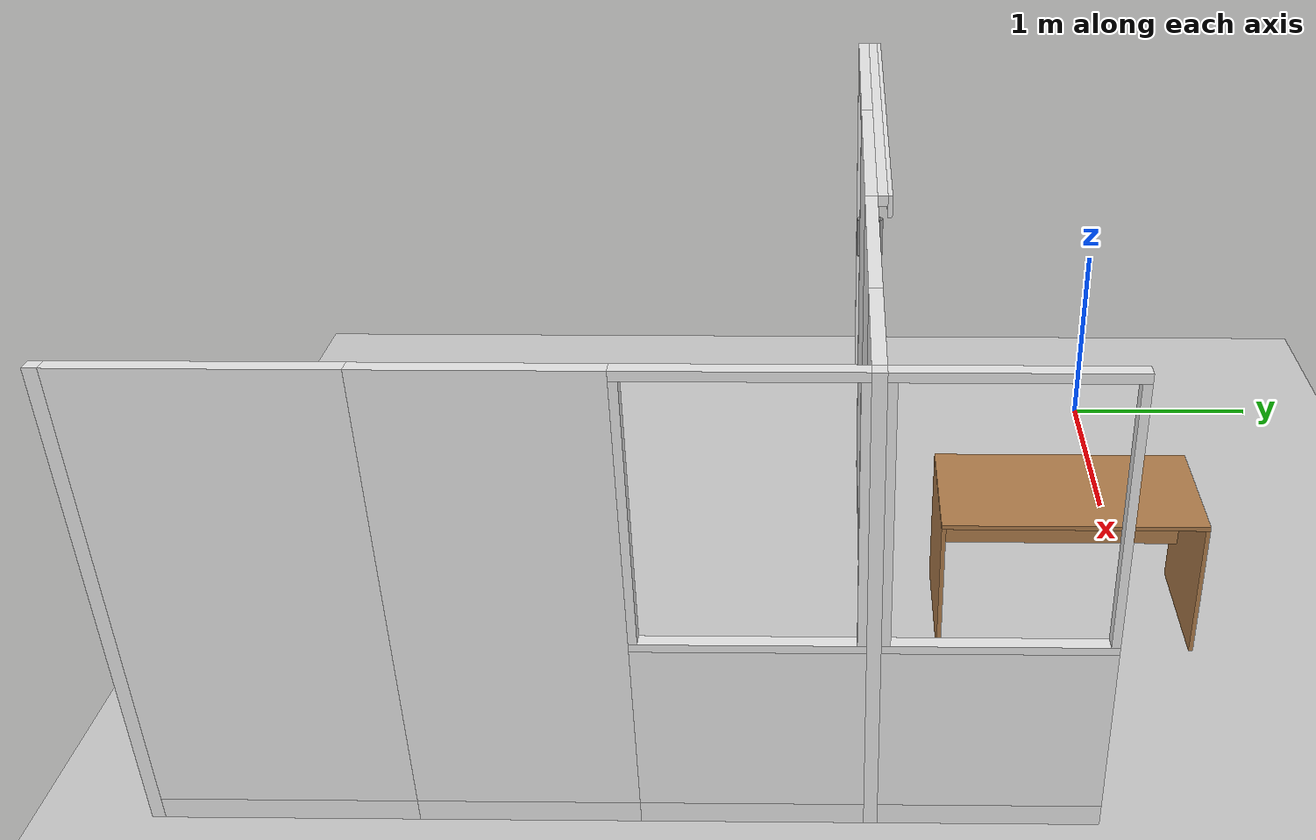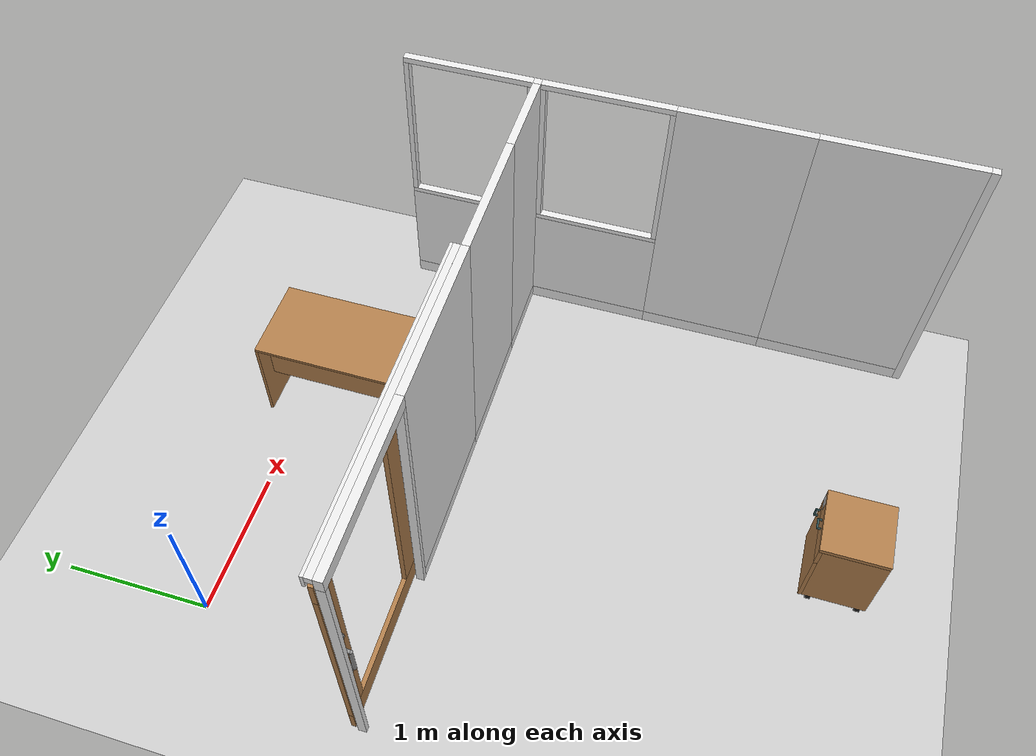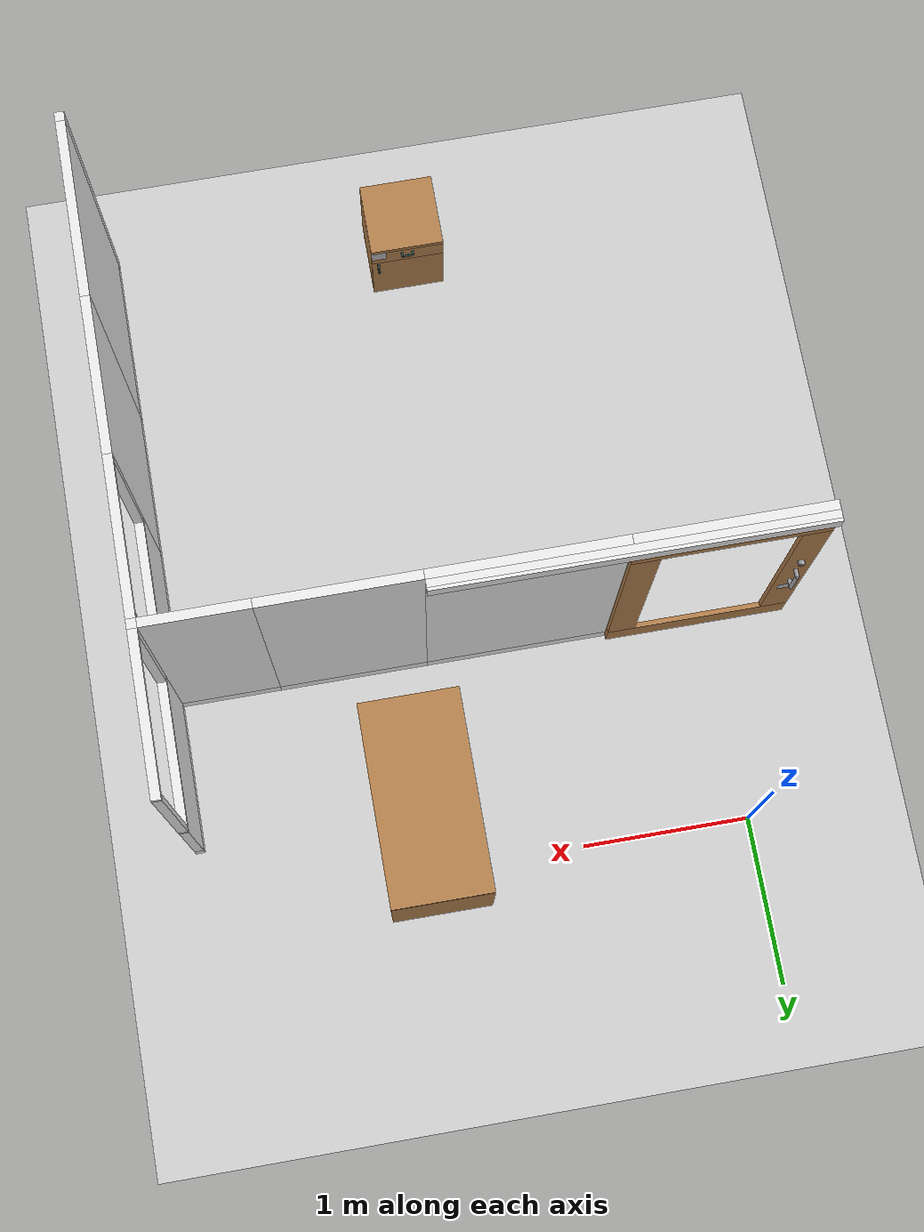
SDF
<sdf version="1.7">
 <world name="default">
  <model name="ground_plane">
   <static>1</static>
   <link name="link">
    <collision name="collision">
     <geometry><plane><normal>0 0 1</normal><size>100 100</size></plane></geometry>
     <surface>
      <contact><collide_bitmask>65535</collide_bitmask></contact>
      <friction><ode><mu>100</mu><mu2>50</mu2></ode></friction>
     </surface>
    </collision>
    <visual name="visual">
     <cast_shadows>0</cast_shadows>
     <geometry><plane><normal>0 0 1</normal><size>100 100</size></plane></geometry>
     <material>
      <script><uri>file://media/materials/scripts/gazebo.material</uri><name>Gazebo/Grey</name></script>
     </material>
    </visual>
   </link>
  </model>
  <model name="wall_front_g">
   <link name="link">
    <inertial>
     <mass>50</mass>
     <inertia><ixx>1</ixx><ixy>0</ixy><ixz>0</ixz><iyy>1</iyy><iyz>0</iyz><izz>1</izz></inertia>
    </inertial>
    <visual name="bottom_frame">
     <pose>0 0 0.05 0 -0 0</pose>
     <geometry><box><size>0.055 0.9 0.1</size></box></geometry>
     <material>
      <script><uri>model://base_materials/color/scripts</uri><name>hsr_color/white</name></script>
     </material>
    </visual>
    <collision name="collision_bottom_frame">
     <pose>0 0 0.05 0 -0 0</pose>
     <geometry><box><size>0.055 0.9 0.1</size></box></geometry>
    </collision>
    <visual name="wall">
     <pose>0 0 0.4875 0 -0 0</pose>
     <geometry><box><size>0.055 0.9 0.775</size></box></geometry>
     <material>
      <script>
       <uri>model://base_materials/wall/scripts</uri>
       <uri>model://base_materials/wall/textures</uri>
       <name>wall/white_noise</name>
      </script>
     </material>
    </visual>
    <collision name="collision_wall">
     <pose>0 0 0.4875 0 -0 0</pose>
     <geometry><box><size>0.055 0.9 0.775</size></box></geometry>
    </collision>
    <visual name="center_frame">
     <pose>0 0 0.8925 0 -0 0</pose>
     <geometry><box><size>0.055 0.9 0.035</size></box></geometry>
     <material>
      <script><uri>model://base_materials/color/scripts</uri><name>hsr_color/white</name></script>
     </material>
    </visual>
    <collision name="collision_center_frame">
     <pose>0 0 0.8925 0 -0 0</pose>
     <geometry><box><size>0.055 0.9 0.035</size></box></geometry>
    </collision>
    <visual name="right_frame">
     <pose>0 0.4325 1.48 0 -0 0</pose>
     <geometry><box><size>0.055 0.035 1.14</size></box></geometry>
     <material>
      <script><uri>model://base_materials/color/scripts</uri><name>hsr_color/white</name></script>
     </material>
    </visual>
    <collision name="collision_right_frame">
     <pose>0 0.4325 1.48 0 -0 0</pose>
     <geometry><box><size>0.055 0.035 1.14</size></box></geometry>
    </collision>
    <visual name="left_frame">
     <pose>0 -0.4325 1.48 0 -0 0</pose>
     <geometry><box><size>0.055 0.035 1.14</size></box></geometry>
     <material>
      <script><uri>model://base_materials/color/scripts</uri><name>hsr_color/white</name></script>
     </material>
    </visual>
    <collision name="collision_left_frame">
     <pose>0 -0.4325 1.48 0 -0 0</pose>
     <geometry><box><size>0.055 0.035 1.14</size></box></geometry>
    </collision>
    <visual name="top_frame">
     <pose>0 0 2.07 0 -0 0</pose>
     <geometry><box><size>0.055 0.9 0.04</size></box></geometry>
     <material>
      <script><uri>model://base_materials/color/scripts</uri><name>hsr_color/white</name></script>
     </material>
    </visual>
    <collision name="collision_top_frame">
     <pose>0 0 2.07 0 -0 0</pose>
     <geometry><box><size>0.055 0.9 0.04</size></box></geometry>
    </collision>
    <velocity_decay><linear>0</linear><angular>0</angular></velocity_decay>
   </link>
   <static>1</static>
   <pose>3.265 -0.8025 0 0 -0 0</pose>
  </model>
  <model name="wall_front_h">
   <link name="link">
    <inertial>
     <mass>50</mass>
     <inertia><ixx>1</ixx><ixy>0</ixy><ixz>0</ixz><iyy>1</iyy><iyz>0</iyz><izz>1</izz></inertia>
    </inertial>
    <visual name="_frame">
     <pose>0 0 1.045 0 -0 0</pose>
     <geometry><box><size>0.055 0.055 2.09</size></box></geometry>
     <material>
      <script><uri>model://base_materials/color/scripts</uri><name>hsr_color/white</name></script>
     </material>
    </visual>
    <collision name="collision_frame">
     <pose>0 0 1.045 0 -0 0</pose>
     <geometry><box><size>0.055 0.055 2.09</size></box></geometry>
    </collision>
    <velocity_decay><linear>0</linear><angular>0</angular></velocity_decay>
   </link>
   <static>1</static>
   <pose>3.265 -1.28 0 0 -0 0</pose>
  </model>
  <model name="wall_front_i">
   <link name="link">
    <inertial>
     <mass>50</mass>
     <inertia><ixx>1</ixx><ixy>0</ixy><ixz>0</ixz><iyy>1</iyy><iyz>0</iyz><izz>1</izz></inertia>
    </inertial>
    <visual name="bottom_frame">
     <pose>0 0 0.05 0 -0 0</pose>
     <geometry><box><size>0.055 0.9 0.1</size></box></geometry>
     <material>
      <script><uri>model://base_materials/color/scripts</uri><name>hsr_color/white</name></script>
     </material>
    </visual>
    <collision name="collision_bottom_frame">
     <pose>0 0 0.05 0 -0 0</pose>
     <geometry><box><size>0.055 0.9 0.1</size></box></geometry>
    </collision>
    <visual name="wall">
     <pose>0 0 0.4875 0 -0 0</pose>
     <geometry><box><size>0.055 0.9 0.775</size></box></geometry>
     <material>
      <script>
       <uri>model://base_materials/wall/scripts</uri>
       <uri>model://base_materials/wall/textures</uri>
       <name>wall/white_noise</name>
      </script>
     </material>
    </visual>
    <collision name="collision_wall">
     <pose>0 0 0.4875 0 -0 0</pose>
     <geometry><box><size>0.055 0.9 0.775</size></box></geometry>
    </collision>
    <visual name="center_frame">
     <pose>0 0 0.8925 0 -0 0</pose>
     <geometry><box><size>0.055 0.9 0.035</size></box></geometry>
     <material>
      <script><uri>model://base_materials/color/scripts</uri><name>hsr_color/white</name></script>
     </material>
    </visual>
    <collision name="collision_center_frame">
     <pose>0 0 0.8925 0 -0 0</pose>
     <geometry><box><size>0.055 0.9 0.035</size></box></geometry>
    </collision>
    <visual name="right_frame">
     <pose>0 0.4325 1.48 0 -0 0</pose>
     <geometry><box><size>0.055 0.035 1.14</size></box></geometry>
     <material>
      <script><uri>model://base_materials/color/scripts</uri><name>hsr_color/white</name></script>
     </material>
    </visual>
    <collision name="collision_right_frame">
     <pose>0 0.4325 1.48 0 -0 0</pose>
     <geometry><box><size>0.055 0.035 1.14</size></box></geometry>
    </collision>
    <visual name="left_frame">
     <pose>0 -0.4325 1.48 0 -0 0</pose>
     <geometry><box><size>0.055 0.035 1.14</size></box></geometry>
     <material>
      <script><uri>model://base_materials/color/scripts</uri><name>hsr_color/white</name></script>
     </material>
    </visual>
    <collision name="collision_left_frame">
     <pose>0 -0.4325 1.48 0 -0 0</pose>
     <geometry><box><size>0.055 0.035 1.14</size></box></geometry>
    </collision>
    <visual name="top_frame">
     <pose>0 0 2.07 0 -0 0</pose>
     <geometry><box><size>0.055 0.9 0.04</size></box></geometry>
     <material>
      <script><uri>model://base_materials/color/scripts</uri><name>hsr_color/white</name></script>
     </material>
    </visual>
    <collision name="collision_top_frame">
     <pose>0 0 2.07 0 -0 0</pose>
     <geometry><box><size>0.055 0.9 0.04</size></box></geometry>
    </collision>
    <velocity_decay><linear>0</linear><angular>0</angular></velocity_decay>
   </link>
   <static>1</static>
   <pose>3.265 -1.7575 0 0 -0 0</pose>
  </model>
  <model name="wall_front_j">
   <link name="link">
    <inertial>
     <mass>50</mass>
     <inertia><ixx>1</ixx><ixy>0</ixy><ixz>0</ixz><iyy>1</iyy><iyz>0</iyz><izz>1</izz></inertia>
    </inertial>
    <visual name="bottom_frame">
     <pose>0 0 0.05 0 -0 0</pose>
     <geometry><box><size>0.055 0.9 0.1</size></box></geometry>
     <material>
      <script><uri>model://base_materials/color/scripts</uri><name>hsr_color/white</name></script>
     </material>
    </visual>
    <collision name="collision_bottom_frame">
     <pose>0 0 0.05 0 -0 0</pose>
     <geometry><box><size>0.055 0.9 0.1</size></box></geometry>
    </collision>
    <visual name="wall">
     <pose>0 0 1.095 0 -0 0</pose>
     <geometry><box><size>0.055 0.9 1.99</size></box></geometry>
     <material>
      <script>
       <uri>model://base_materials/wall/scripts</uri>
       <uri>model://base_materials/wall/textures</uri>
       <name>wall/white_noise</name>
      </script>
     </material>
    </visual>
    <collision name="collision_wall">
     <pose>0 0 1.095 0 -0 0</pose>
     <geometry><box><size>0.055 0.9 1.99</size></box></geometry>
    </collision>
    <velocity_decay><linear>0</linear><angular>0</angular></velocity_decay>
   </link>
   <static>1</static>
   <pose>3.265 -2.6575 0 0 -0 0</pose>
  </model>
  <model name="wall_front_k">
   <link name="link">
    <inertial>
     <mass>50</mass>
     <inertia><ixx>1</ixx><ixy>0</ixy><ixz>0</ixz><iyy>1</iyy><iyz>0</iyz><izz>1</izz></inertia>
    </inertial>
    <visual name="bottom_frame">
     <pose>0 0 0.05 0 -0 0</pose>
     <geometry><box><size>0.055 1.04 0.1</size></box></geometry>
     <material>
      <script><uri>model://base_materials/color/scripts</uri><name>hsr_color/white</name></script>
     </material>
    </visual>
    <collision name="collision_bottom_frame">
     <pose>0 0 0.05 0 -0 0</pose>
     <geometry><box><size>0.055 1.04 0.1</size></box></geometry>
    </collision>
    <visual name="wall">
     <pose>0 0 1.095 0 -0 0</pose>
     <geometry><box><size>0.055 1.04 1.99</size></box></geometry>
     <material>
      <script>
       <uri>model://base_materials/wall/scripts</uri>
       <uri>model://base_materials/wall/textures</uri>
       <name>wall/white_noise</name>
      </script>
     </material>
    </visual>
    <collision name="collision_wall">
     <pose>0 0 1.095 0 -0 0</pose>
     <geometry><box><size>0.055 1.04 1.99</size></box></geometry>
    </collision>
    <velocity_decay><linear>0</linear><angular>0</angular></velocity_decay>
   </link>
   <static>1</static>
   <pose>3.265 -3.6275 0 0 -0 0</pose>
  </model>
  <model name="wall_front_l">
   <link name="link">
    <inertial>
     <mass>50</mass>
     <inertia><ixx>1</ixx><ixy>0</ixy><ixz>0</ixz><iyy>1</iyy><iyz>0</iyz><izz>1</izz></inertia>
    </inertial>
    <visual name="_frame">
     <pose>0 0 1.045 0 -0 0</pose>
     <geometry><box><size>0.055 0.055 2.09</size></box></geometry>
     <material>
      <script><uri>model://base_materials/color/scripts</uri><name>hsr_color/white</name></script>
     </material>
    </visual>
    <collision name="collision_frame">
     <pose>0 0 1.045 0 -0 0</pose>
     <geometry><box><size>0.055 0.055 2.09</size></box></geometry>
    </collision>
    <velocity_decay><linear>0</linear><angular>0</angular></velocity_decay>
   </link>
   <static>1</static>
   <pose>3.265 -4.175 0 0 -0 0</pose>
  </model>
  <model name="wall_center_long_a">
   <link name="link">
    <inertial>
     <mass>50</mass>
     <inertia><ixx>1</ixx><ixy>0</ixy><ixz>0</ixz><iyy>1</iyy><iyz>0</iyz><izz>1</izz></inertia>
    </inertial>
    <visual name="bottom_frame">
     <pose>0 0 0.05 0 -0 0</pose>
     <geometry><box><size>0.055 0.6 0.1</size></box></geometry>
     <material>
      <script><uri>model://base_materials/color/scripts</uri><name>hsr_color/white</name></script>
     </material>
    </visual>
    <collision name="collision_bottom_frame">
     <pose>0 0 0.05 0 -0 0</pose>
     <geometry><box><size>0.055 0.6 0.1</size></box></geometry>
    </collision>
    <visual name="wall">
     <pose>0 0 1.095 0 -0 0</pose>
     <geometry><box><size>0.055 0.6 1.99</size></box></geometry>
     <material>
      <script>
       <uri>model://base_materials/wall/scripts</uri>
       <uri>model://base_materials/wall/textures</uri>
       <name>wall/white_noise</name>
      </script>
     </material>
    </visual>
    <collision name="collision_wall">
     <pose>0 0 1.095 0 -0 0</pose>
     <geometry><box><size>0.055 0.6 1.99</size></box></geometry>
    </collision>
    <velocity_decay><linear>0</linear><angular>0</angular></velocity_decay>
   </link>
   <static>1</static>
   <pose>2.9375 -1.28 0 0 -0 1.5708</pose>
  </model>
  <model name="wall_center_long_b">
   <link name="link">
    <inertial>
     <mass>50</mass>
     <inertia><ixx>1</ixx><ixy>0</ixy><ixz>0</ixz><iyy>1</iyy><iyz>0</iyz><izz>1</izz></inertia>
    </inertial>
    <visual name="bottom_frame">
     <pose>0 0 0.05 0 -0 0</pose>
     <geometry><box><size>0.055 0.9 0.1</size></box></geometry>
     <material>
      <script><uri>model://base_materials/color/scripts</uri><name>hsr_color/white</name></script>
     </material>
    </visual>
    <collision name="collision_bottom_frame">
     <pose>0 0 0.05 0 -0 0</pose>
     <geometry><box><size>0.055 0.9 0.1</size></box></geometry>
    </collision>
    <visual name="wall">
     <pose>0 0 1.095 0 -0 0</pose>
     <geometry><box><size>0.055 0.9 1.99</size></box></geometry>
     <material>
      <script>
       <uri>model://base_materials/wall/scripts</uri>
       <uri>model://base_materials/wall/textures</uri>
       <name>wall/white_noise</name>
      </script>
     </material>
    </visual>
    <collision name="collision_wall">
     <pose>0 0 1.095 0 -0 0</pose>
     <geometry><box><size>0.055 0.9 1.99</size></box></geometry>
    </collision>
    <velocity_decay><linear>0</linear><angular>0</angular></velocity_decay>
   </link>
   <static>1</static>
   <pose>2.1875 -1.28 0 0 -0 1.5708</pose>
  </model>
  <model name="wall_center_long_c">
   <link name="link">
    <inertial>
     <mass>50</mass>
     <inertia><ixx>1</ixx><ixy>0</ixy><ixz>0</ixz><iyy>1</iyy><iyz>0</iyz><izz>1</izz></inertia>
    </inertial>
    <visual name="bottom_frame">
     <pose>0 0 0.05 0 -0 0</pose>
     <geometry><box><size>0.055 1.1 0.1</size></box></geometry>
     <material>
      <script><uri>model://base_materials/color/scripts</uri><name>hsr_color/white</name></script>
     </material>
    </visual>
    <collision name="collision_bottom_frame">
     <pose>0 0 0.05 0 -0 0</pose>
     <geometry><box><size>0.055 1.1 0.1</size></box></geometry>
    </collision>
    <visual name="wall">
     <pose>0 0 1.095 0 -0 0</pose>
     <geometry><box><size>0.055 1.1 1.99</size></box></geometry>
     <material>
      <script>
       <uri>model://base_materials/wall/scripts</uri>
       <uri>model://base_materials/wall/textures</uri>
       <name>wall/white_noise</name>
      </script>
     </material>
    </visual>
    <collision name="collision_wall">
     <pose>0 0 1.095 0 -0 0</pose>
     <geometry><box><size>0.055 1.1 1.99</size></box></geometry>
    </collision>
    <velocity_decay><linear>0</linear><angular>0</angular></velocity_decay>
   </link>
   <static>1</static>
   <pose>1.1875 -1.28 0 0 -0 1.5708</pose>
  </model>
  <model name="sliding_door_1">
   <joint name="frame_to_world_joint" type="revolute">
    <parent>world</parent>
    <child>frame</child>
    <axis>
     <xyz expressed_in="__model__">0 0 1</xyz>
     <limit><upper>0</upper><lower>0</lower></limit>
     <dynamics><spring_reference>0</spring_reference><spring_stiffness>0</spring_stiffness></dynamics>
    </axis>
   </joint>
   <link name="frame">
    <inertial>
     <mass>50</mass>
     <inertia><ixx>1</ixx><ixy>0</ixy><ixz>0</ixz><iyy>1</iyy><iyz>0</iyz><izz>1</izz></inertia>
    </inertial>
    <visual name="right_frame">
     <pose>0 0.5325 0.995 0 -0 0</pose>
     <geometry><box><size>0.055 0.035 1.99</size></box></geometry>
     <material>
      <script><uri>model://base_materials/color/scripts</uri><name>hsr_color/white</name></script>
     </material>
    </visual>
    <collision name="collision_right_frame">
     <pose>0 0.5325 0.995 0 -0 0</pose>
     <geometry><box><size>0.055 0.035 1.99</size></box></geometry>
    </collision>
    <visual name="left_frame">
     <pose>0 -0.5325 0.995 0 -0 0</pose>
     <geometry><box><size>0.055 0.035 1.99</size></box></geometry>
     <material>
      <script><uri>model://base_materials/color/scripts</uri><name>hsr_color/white</name></script>
     </material>
    </visual>
    <collision name="collision_left_frame">
     <pose>0 -0.5325 0.995 0 -0 0</pose>
     <geometry><box><size>0.055 0.035 1.99</size></box></geometry>
    </collision>
    <visual name="top_frame">
     <pose>0 0 2.04 0 -0 0</pose>
     <geometry><box><size>0.055 1.1 0.1</size></box></geometry>
     <material>
      <script><uri>model://base_materials/color/scripts</uri><name>hsr_color/white</name></script>
     </material>
    </visual>
    <collision name="collision_top_frame">
     <pose>0 0 2.04 0 -0 0</pose>
     <geometry><box><size>0.055 1.1 0.1</size></box></geometry>
    </collision>
    <visual name="top_guard">
     <pose>0.05 -0.55 2.065 0 -0 0</pose>
     <geometry><box><size>0.045 2.2 0.05</size></box></geometry>
     <material>
      <script><uri>model://base_materials/color/scripts</uri><name>hsr_color/white</name></script>
     </material>
    </visual>
    <collision name="collision_top_guard">
     <pose>0.05 -0.55 2.065 0 -0 0</pose>
     <geometry><box><size>0.045 2.2 0.05</size></box></geometry>
    </collision>
    <visual name="front_guard">
     <pose>0.0825 -0.55 2.04 0 -0 0</pose>
     <geometry><box><size>0.02 2.2 0.1</size></box></geometry>
     <material>
      <script><uri>model://base_materials/color/scripts</uri><name>hsr_color/white</name></script>
     </material>
    </visual>
    <collision name="collision_front_guard">
     <pose>0.0825 -0.55 2.04 0 -0 0</pose>
     <geometry><box><size>0.02 2.2 0.1</size></box></geometry>
    </collision>
   </link>
   <link name="door">
    <pose>-0.0275 0 0 0 -0 0</pose>
    <visual name="top_frame">
     <pose>0.0775 0 1.9075 0 -0 0</pose>
     <geometry><box><size>0.03 1.1 0.185</size></box></geometry>
     <material>
      <script><uri>model://base_materials/wood/scripts/wood.material</uri><name>base_materials/wood</name></script>
     </material>
    </visual>
    <collision name="collision_top_frame">
     <pose>0.0775 0 1.9075 0 -0 0</pose>
     <geometry><box><size>0.03 1.1 0.185</size></box></geometry>
    </collision>
    <visual name="right_frame">
     <pose>0.0775 0.4675 1.025 0 -0 0</pose>
     <geometry><box><size>0.03 0.165 1.58</size></box></geometry>
     <material>
      <script><uri>model://base_materials/wood/scripts/wood.material</uri><name>base_materials/wood</name></script>
     </material>
    </visual>
    <collision name="collision_right_frame">
     <pose>0.0775 0.4675 1.025 0 -0 0</pose>
     <geometry><box><size>0.03 0.165 1.58</size></box></geometry>
    </collision>
    <visual name="left_frame">
     <pose>0.0775 -0.4675 1.025 0 -0 0</pose>
     <geometry><box><size>0.03 0.165 1.58</size></box></geometry>
     <material>
      <script><uri>model://base_materials/wood/scripts/wood.material</uri><name>base_materials/wood</name></script>
     </material>
    </visual>
    <collision name="collision_left_frame">
     <pose>0.0775 -0.4675 1.025 0 -0 0</pose>
     <geometry><box><size>0.03 0.165 1.58</size></box></geometry>
    </collision>
    <visual name="bottom_frame">
     <pose>0.0775 0 0.1425 0 -0 0</pose>
     <geometry><box><size>0.03 1.1 0.185</size></box></geometry>
     <material>
      <script><uri>model://base_materials/wood/scripts/wood.material</uri><name>base_materials/wood</name></script>
     </material>
    </visual>
    <collision name="collision_bottom_frame">
     <pose>0.0775 0 0.1425 0 -0 0</pose>
     <geometry><box><size>0.03 1.1 0.185</size></box></geometry>
    </collision>
    <visual name="handle_top_frame">
     <pose>0.0775 0.4675 1.0675 3.14159 1.57079 3.14159</pose>
     <geometry><cylinder><radius>0.0125</radius><length>0.125</length></cylinder></geometry>
     <material>
      <script><uri>model://base_materials/color/scripts</uri><name>hsr_color/grey</name></script>
     </material>
    </visual>
    <collision name="collision_handle_top_frame">
     <pose>0.0775 0.4675 1.0675 3.14159 1.57079 3.14159</pose>
     <geometry><cylinder><radius>0.0125</radius><length>0.125</length></cylinder></geometry>
    </collision>
    <visual name="handle_bottom_frame">
     <pose>0.0775 0.4675 0.8425 3.14159 1.57079 3.14159</pose>
     <geometry><cylinder><radius>0.0125</radius><length>0.125</length></cylinder></geometry>
     <material>
      <script><uri>model://base_materials/color/scripts</uri><name>hsr_color/grey</name></script>
     </material>
    </visual>
    <collision name="collision_handle_bottom_frame">
     <pose>0.0775 0.4675 0.8425 3.14159 1.57079 3.14159</pose>
     <geometry><cylinder><radius>0.0125</radius><length>0.125</length></cylinder></geometry>
    </collision>
    <visual name="handle_front_frame">
     <pose>0.14 0.4675 0.955 0 -0 0</pose>
     <geometry><cylinder><radius>0.0125</radius><length>0.225</length></cylinder></geometry>
     <material>
      <script><uri>model://base_materials/color/scripts</uri><name>hsr_color/grey</name></script>
     </material>
    </visual>
    <collision name="collision_handle_front_frame">
     <pose>0.14 0.4675 0.955 0 -0 0</pose>
     <geometry><cylinder><radius>0.0125</radius><length>0.225</length></cylinder></geometry>
    </collision>
    <visual name="marker_0011">
     <pose>0.093 0.4675 0.69 3.14159 1.57079 -9.3e-05</pose>
     <geometry><box><size>0.09 0.09 0.0001</size></box></geometry>
     <material>
      <script>
       <uri>model://marker/0011/scripts</uri>
       <uri>model://marker/0011/textures</uri>
       <name>Marker/0011</name>
      </script>
     </material>
    </visual>
    <visual name="handle_back_frame">
     <pose>0.015 0.4675 0.955 0 -0 0</pose>
     <geometry><cylinder><radius>0.0125</radius><length>0.225</length></cylinder></geometry>
     <material>
      <script><uri>model://base_materials/color/scripts</uri><name>hsr_color/grey</name></script>
     </material>
    </visual>
    <collision name="collision_handle_back_frame">
     <pose>0.015 0.4675 0.955 0 -0 0</pose>
     <geometry><cylinder><radius>0.0125</radius><length>0.225</length></cylinder></geometry>
    </collision>
    <visual name="marker_0013">
     <pose>0.062 0.4675 0.69 3.14159 1.57079 3.14159</pose>
     <geometry><box><size>0.09 0.09 0.0001</size></box></geometry>
     <material>
      <script>
       <uri>model://marker/0013/scripts</uri>
       <uri>model://marker/0013/textures</uri>
       <name>Marker/0013</name>
      </script>
     </material>
    </visual>
    <visual name="handle_front_top_corner">
     <pose>0.14 0.4675 1.0675 0 -0 0</pose>
     <geometry><sphere><radius>0.0125</radius></sphere></geometry>
     <material>
      <script><uri>model://base_materials/color/scripts</uri><name>hsr_color/grey</name></script>
     </material>
    </visual>
    <collision name="collision_handle_front_top_corner">
     <pose>0.14 0.4675 1.0675 0 -0 0</pose>
     <geometry><sphere><radius>0.0125</radius></sphere></geometry>
    </collision>
    <visual name="handle_front_bottom_corner">
     <pose>0.14 0.4675 0.8425 0 -0 0</pose>
     <geometry><sphere><radius>0.0125</radius></sphere></geometry>
     <material>
      <script><uri>model://base_materials/color/scripts</uri><name>hsr_color/grey</name></script>
     </material>
    </visual>
    <collision name="collision_handle_front_bottom_corner">
     <pose>0.14 0.4675 0.8425 0 -0 0</pose>
     <geometry><sphere><radius>0.0125</radius></sphere></geometry>
    </collision>
    <visual name="handle_back_top_corner">
     <pose>0.015 0.4675 1.0675 0 -0 0</pose>
     <geometry><sphere><radius>0.0125</radius></sphere></geometry>
     <material>
      <script><uri>model://base_materials/color/scripts</uri><name>hsr_color/grey</name></script>
     </material>
    </visual>
    <collision name="collision_handle_back_top_corner">
     <pose>0.015 0.4675 1.0675 0 -0 0</pose>
     <geometry><sphere><radius>0.0125</radius></sphere></geometry>
    </collision>
    <visual name="handle_back_bottom_corner">
     <pose>0.015 0.4675 0.8425 0 -0 0</pose>
     <geometry><sphere><radius>0.0125</radius></sphere></geometry>
     <material>
      <script><uri>model://base_materials/color/scripts</uri><name>hsr_color/grey</name></script>
     </material>
    </visual>
    <collision name="collision_handle_back_bottom_corner">
     <pose>0.015 0.4675 0.8425 0 -0 0</pose>
     <geometry><sphere><radius>0.0125</radius></sphere></geometry>
    </collision>
    <visual name="handle_lock1">
     <pose>0.0775 0.4675 1.25 3.14159 1.57079 3.14159</pose>
     <geometry><cylinder><radius>0.02</radius><length>0.08</length></cylinder></geometry>
     <material>
      <script><uri>model://base_materials/color/scripts</uri><name>hsr_color/grey</name></script>
     </material>
    </visual>
    <collision name="collision_handle_lock1">
     <pose>0.0775 0.4675 1.25 3.14159 1.57079 3.14159</pose>
     <geometry><cylinder><radius>0.02</radius><length>0.08</length></cylinder></geometry>
    </collision>
    <visual name="handle_lock2">
     <pose>0.0775 0.4675 1.25 3.14159 1.57079 3.14159</pose>
     <geometry><cylinder><radius>0.015</radius><length>0.09</length></cylinder></geometry>
     <material>
      <script><uri>model://base_materials/color/scripts</uri><name>hsr_color/grey</name></script>
     </material>
    </visual>
    <collision name="collision_handle_lock2">
     <pose>0.0775 0.4675 1.25 3.14159 1.57079 3.14159</pose>
     <geometry><cylinder><radius>0.015</radius><length>0.09</length></cylinder></geometry>
    </collision>
    <velocity_decay><linear>0</linear><angular>0</angular></velocity_decay>
    <inertial>
     <inertia><ixx>1</ixx><ixy>0</ixy><ixz>0</ixz><iyy>1</iyy><iyz>0</iyz><izz>1</izz></inertia>
     <mass>1</mass>
    </inertial>
   </link>
   <joint name="top_sliding_joint" type="prismatic">
    <parent>frame</parent>
    <child>door</child>
    <axis>
     <dynamics>
      <damping>1</damping>
      <friction>1</friction>
      <spring_reference>0</spring_reference>
      <spring_stiffness>0</spring_stiffness>
     </dynamics>
     <limit><lower>-1</lower><upper>0</upper></limit>
     <xyz expressed_in="__model__">0 1 0</xyz>
    </axis>
   </joint>
   <static>0</static>
   <pose>0.0875 -1.28 -0 0 -0 1.5708</pose>
  </model>
  <model name="wagon_with_marker">
   <link name="link">
    <inertial>
     <mass>10</mass>
     <inertia><ixx>1</ixx><ixy>0</ixy><ixz>0</ixz><iyy>1</iyy><iyz>0</iyz><izz>1</izz></inertia>
    </inertial>
    <visual name="left_board">
     <pose>-0.2325 0.01 0.345 0 -0 0</pose>
     <geometry><box><size>0.415 0.02 0.59</size></box></geometry>
     <material>
      <script><uri>model://base_materials/wood/scripts/wood.material</uri><name>base_materials/wood</name></script>
     </material>
    </visual>
    <collision name="collision_left_board">
     <pose>-0.2325 0.01 0.345 0 -0 0</pose>
     <geometry><box><size>0.415 0.02 0.59</size></box></geometry>
    </collision>
    <visual name="right_board">
     <pose>-0.2325 0.4325 0.345 0 -0 0</pose>
     <geometry><box><size>0.415 0.02 0.59</size></box></geometry>
     <material>
      <script><uri>model://base_materials/wood/scripts/wood.material</uri><name>base_materials/wood</name></script>
     </material>
    </visual>
    <collision name="collision_right_board">
     <pose>-0.2325 0.4325 0.345 0 -0 0</pose>
     <geometry><box><size>0.415 0.02 0.59</size></box></geometry>
    </collision>
    <visual name="top_board">
     <pose>-0.22 0.2225 0.655 0 -0 0</pose>
     <geometry><box><size>0.44 0.445 0.03</size></box></geometry>
     <material>
      <script><uri>model://base_materials/wood/scripts/wood.material</uri><name>base_materials/wood</name></script>
     </material>
    </visual>
    <collision name="collision_top_board">
     <pose>-0.22 0.2225 0.655 0 -0 0</pose>
     <geometry><box><size>0.44 0.445 0.03</size></box></geometry>
    </collision>
    <visual name="back_board">
     <pose>-0.425 0.2225 0.345 0 -0 0</pose>
     <geometry><box><size>0.02 0.405 0.59</size></box></geometry>
     <material>
      <script><uri>model://base_materials/wood/scripts/wood.material</uri><name>base_materials/wood</name></script>
     </material>
    </visual>
    <collision name="collision_back_board">
     <pose>-0.425 0.2225 0.345 0 -0 0</pose>
     <geometry><box><size>0.02 0.405 0.59</size></box></geometry>
    </collision>
    <visual name="bottom_board">
     <pose>-0.2325 0.2225 0.06 0 -0 0</pose>
     <geometry><box><size>0.415 0.405 0.02</size></box></geometry>
     <material>
      <script><uri>model://base_materials/wood/scripts/wood.material</uri><name>base_materials/wood</name></script>
     </material>
    </visual>
    <collision name="collision_bottom_board">
     <pose>-0.2325 0.2225 0.06 0 -0 0</pose>
     <geometry><box><size>0.415 0.405 0.02</size></box></geometry>
    </collision>
    <visual name="1st_drawer">
     <pose>-0.0125 0.2225 0.57 0 -0 0</pose>
     <geometry><box><size>0.025 0.445 0.14</size></box></geometry>
     <material>
      <script><uri>model://base_materials/wood/scripts/wood.material</uri><name>base_materials/wood</name></script>
     </material>
    </visual>
    <collision name="collision_1st_drawer">
     <pose>-0.0125 0.2225 0.57 0 -0 0</pose>
     <geometry><box><size>0.025 0.445 0.14</size></box></geometry>
    </collision>
    <visual name="1st_drawer_handle_l1">
     <pose>0.0115 0.1895 0.6 3.14159 1.57079 3.14159</pose>
     <geometry><cylinder><radius>0.007</radius><length>0.023</length></cylinder></geometry>
     <material>
      <ambient>0.18431 0.3098 0.3098 1</ambient>
      <diffuse>0.18431 0.3098 0.3098 1</diffuse>
      <specular>0.1 0.1 0.1 1</specular>
     </material>
    </visual>
    <collision name="collision_1st_drawer_handle_l1">
     <pose>0.0115 0.1895 0.6 3.14159 1.57079 3.14159</pose>
     <geometry><cylinder><radius>0.007</radius><length>0.023</length></cylinder></geometry>
    </collision>
    <visual name="1st_drawer_handle_l2">
     <pose>0.023 0.1895 0.6 0 -0 0</pose>
     <geometry><sphere><radius>0.007</radius></sphere></geometry>
     <material>
      <ambient>0.18431 0.3098 0.3098 1</ambient>
      <diffuse>0.18431 0.3098 0.3098 1</diffuse>
      <specular>0.1 0.1 0.1 1</specular>
     </material>
    </visual>
    <collision name="collision_1st_drawer_handle_l2">
     <pose>0.023 0.1895 0.6 0 -0 0</pose>
     <geometry><sphere><radius>0.007</radius></sphere></geometry>
    </collision>
    <visual name="1st_drawer_handle_r1">
     <pose>0.0115 0.2555 0.6 3.14159 1.57079 3.14159</pose>
     <geometry><cylinder><radius>0.007</radius><length>0.023</length></cylinder></geometry>
     <material>
      <ambient>0.18431 0.3098 0.3098 1</ambient>
      <diffuse>0.18431 0.3098 0.3098 1</diffuse>
      <specular>0.1 0.1 0.1 1</specular>
     </material>
    </visual>
    <collision name="collision_1st_drawer_handle_r1">
     <pose>0.0115 0.2555 0.6 3.14159 1.57079 3.14159</pose>
     <geometry><cylinder><radius>0.007</radius><length>0.023</length></cylinder></geometry>
    </collision>
    <visual name="1st_drawer_handle_r2">
     <pose>0.023 0.2555 0.6 0 -0 0</pose>
     <geometry><sphere><radius>0.007</radius></sphere></geometry>
     <material>
      <ambient>0.18431 0.3098 0.3098 1</ambient>
      <diffuse>0.18431 0.3098 0.3098 1</diffuse>
      <specular>0.1 0.1 0.1 1</specular>
     </material>
    </visual>
    <collision name="collision_1st_drawer_handle_r2">
     <pose>0.023 0.2555 0.6 0 -0 0</pose>
     <geometry><sphere><radius>0.007</radius></sphere></geometry>
    </collision>
    <visual name="1st_drawer_handle_center">
     <pose>0.023 0.2225 0.6 1.5708 -0 0</pose>
     <geometry><cylinder><radius>0.007</radius><length>0.066</length></cylinder></geometry>
     <material>
      <ambient>0.18431 0.3098 0.3098 1</ambient>
      <diffuse>0.18431 0.3098 0.3098 1</diffuse>
      <specular>0.1 0.1 0.1 1</specular>
     </material>
    </visual>
    <collision name="collision_1st_drawer_handle_center">
     <pose>0.023 0.2225 0.6 1.5708 -0 0</pose>
     <geometry><cylinder><radius>0.007</radius><length>0.066</length></cylinder></geometry>
    </collision>
    <visual name="2nd_drawer">
     <pose>-0.0125 0.2225 0.275 0 -0 0</pose>
     <geometry><box><size>0.025 0.445 0.45</size></box></geometry>
     <material>
      <script><uri>model://base_materials/wood/scripts/wood.material</uri><name>base_materials/wood</name></script>
     </material>
    </visual>
    <collision name="collision_2nd_drawer">
     <pose>-0.0125 0.2225 0.275 0 -0 0</pose>
     <geometry><box><size>0.025 0.445 0.45</size></box></geometry>
    </collision>
    <visual name="2nd_drawer_handle_top1">
     <pose>0.0115 0.04 0.47 3.14159 1.57079 3.14159</pose>
     <geometry><cylinder><radius>0.007</radius><length>0.023</length></cylinder></geometry>
     <material>
      <ambient>0.18431 0.3098 0.3098 1</ambient>
      <diffuse>0.18431 0.3098 0.3098 1</diffuse>
      <specular>0.1 0.1 0.1 1</specular>
     </material>
    </visual>
    <collision name="collision_2nd_drawer_handle_top1">
     <pose>0.0115 0.04 0.47 3.14159 1.57079 3.14159</pose>
     <geometry><cylinder><radius>0.007</radius><length>0.023</length></cylinder></geometry>
    </collision>
    <visual name="2nd_drawer_handle_top2">
     <pose>0.023 0.04 0.47 0 -0 0</pose>
     <geometry><sphere><radius>0.007</radius></sphere></geometry>
     <material>
      <ambient>0.18431 0.3098 0.3098 1</ambient>
      <diffuse>0.18431 0.3098 0.3098 1</diffuse>
      <specular>0.1 0.1 0.1 1</specular>
     </material>
    </visual>
    <collision name="2nd_drawer_handle_top2">
     <pose>0.023 0.04 0.47 0 -0 0</pose>
     <geometry><sphere><radius>0.007</radius></sphere></geometry>
    </collision>
    <visual name="2nd_drawer_handle_bottom1">
     <pose>0.0115 0.04 0.404 3.14159 1.57079 3.14159</pose>
     <geometry><cylinder><radius>0.007</radius><length>0.023</length></cylinder></geometry>
     <material>
      <ambient>0.18431 0.3098 0.3098 1</ambient>
      <diffuse>0.18431 0.3098 0.3098 1</diffuse>
      <specular>0.1 0.1 0.1 1</specular>
     </material>
    </visual>
    <collision name="collision_2nd_drawer_handle_bottom1">
     <pose>0.0115 0.04 0.404 3.14159 1.57079 3.14159</pose>
     <geometry><cylinder><radius>0.007</radius><length>0.023</length></cylinder></geometry>
    </collision>
    <visual name="2nd_drawer_handle_bottom2">
     <pose>0.023 0.04 0.404 0 -0 0</pose>
     <geometry><sphere><radius>0.007</radius></sphere></geometry>
     <material>
      <ambient>0.18431 0.3098 0.3098 1</ambient>
      <diffuse>0.18431 0.3098 0.3098 1</diffuse>
      <specular>0.1 0.1 0.1 1</specular>
     </material>
    </visual>
    <collision name="2nd_drawer_handle_bottom2">
     <pose>0.023 0.04 0.404 0 -0 0</pose>
     <geometry><sphere><radius>0.007</radius></sphere></geometry>
    </collision>
    <visual name="2nd_drawer_handle_center">
     <pose>0.023 0.04 0.437 0 -0 0</pose>
     <geometry><cylinder><radius>0.007</radius><length>0.066</length></cylinder></geometry>
     <material>
      <ambient>0.18431 0.3098 0.3098 1</ambient>
      <diffuse>0.18431 0.3098 0.3098 1</diffuse>
      <specular>0.1 0.1 0.1 1</specular>
     </material>
    </visual>
    <collision name="collision_2nd_drawer_handle_center">
     <pose>0.023 0.04 0.437 0 -0 0</pose>
     <geometry><cylinder><radius>0.007</radius><length>0.066</length></cylinder></geometry>
    </collision>
    <visual name="left_front_caster">
     <pose>-0.07 0.025 0.025 3.14159 1.57079 3.14159</pose>
     <geometry><cylinder><radius>0.025</radius><length>0.035</length></cylinder></geometry>
     <material><script><name>Gazebo/Black</name><uri>__default__</uri></script></material>
    </visual>
    <collision name="collision_left_front_caster">
     <pose>-0.07 0.025 0.025 3.14159 1.57079 3.14159</pose>
     <geometry><cylinder><radius>0.025</radius><length>0.035</length></cylinder></geometry>
    </collision>
    <visual name="right_front_caster">
     <pose>-0.07 0.42 0.025 3.14159 1.57079 3.14159</pose>
     <geometry><cylinder><radius>0.025</radius><length>0.035</length></cylinder></geometry>
     <material><script><name>Gazebo/Black</name><uri>__default__</uri></script></material>
    </visual>
    <collision name="collision_right_front_caster">
     <pose>-0.07 0.42 0.025 3.14159 1.57079 3.14159</pose>
     <geometry><cylinder><radius>0.025</radius><length>0.035</length></cylinder></geometry>
    </collision>
    <visual name="left_back_caster">
     <pose>-0.39 0.025 0.025 3.14159 1.57079 3.14159</pose>
     <geometry><cylinder><radius>0.025</radius><length>0.035</length></cylinder></geometry>
     <material><script><name>Gazebo/Black</name><uri>__default__</uri></script></material>
    </visual>
    <collision name="collision_left_back_caster">
     <pose>-0.39 0.025 0.025 3.14159 1.57079 3.14159</pose>
     <geometry><cylinder><radius>0.025</radius><length>0.035</length></cylinder></geometry>
    </collision>
    <visual name="right_back_caster">
     <pose>-0.39 0.42 0.025 3.14159 1.57079 3.14159</pose>
     <geometry><cylinder><radius>0.025</radius><length>0.035</length></cylinder></geometry>
     <material><script><name>Gazebo/Black</name><uri>__default__</uri></script></material>
    </visual>
    <collision name="collision_right_back_caster">
     <pose>-0.39 0.42 0.025 3.14159 1.57079 3.14159</pose>
     <geometry><cylinder><radius>0.025</radius><length>0.035</length></cylinder></geometry>
    </collision>
    <visual name="marker_0012">
     <pose>0 0.045 0.595 3.14159 1.57079 -9.3e-05</pose>
     <geometry><box><size>0.09 0.09 0.0001</size></box></geometry>
     <material>
      <script>
       <uri>model://marker/0012/scripts</uri>
       <uri>model://marker/0012/textures</uri>
       <name>Marker/0012</name>
      </script>
     </material>
    </visual>
    <velocity_decay><linear>0</linear><angular>0</angular></velocity_decay>
   </link>
   <static>1</static>
   <pose>1.658 -3.7 0 0 -0 1.5708</pose>
  </model>
  <model name="office_desk">
   <link name="link">
    <inertial>
     <mass>10</mass>
     <inertia><ixx>1</ixx><ixy>0</ixy><ixz>0</ixz><iyy>1</iyy><iyz>0</iyz><izz>1</izz></inertia>
    </inertial>
    <visual name="top_board">
     <pose>-0.3 0.6 0.69 0 -0 0</pose>
     <geometry><box><size>0.6 1.2 0.02</size></box></geometry>
     <material>
      <script>
       <uri>model://base_materials/wood/scripts/wood.material</uri>
       <name>base_materials/dark_wood</name>
      </script>
     </material>
    </visual>
    <collision name="collision_top_board">
     <pose>-0.3 0.6 0.69 0 -0 0</pose>
     <geometry><box><size>0.6 1.2 0.02</size></box></geometry>
    </collision>
    <visual name="left_board">
     <pose>-0.3 0.01 0.34 0 -0 0</pose>
     <geometry><box><size>0.6 0.02 0.68</size></box></geometry>
     <material>
      <script>
       <uri>model://base_materials/wood/scripts/wood.material</uri>
       <name>base_materials/dark_wood</name>
      </script>
     </material>
    </visual>
    <collision name="collision_left_board">
     <pose>-0.3 0.01 0.34 0 -0 0</pose>
     <geometry><box><size>0.6 0.02 0.68</size></box></geometry>
    </collision>
    <visual name="right_board">
     <pose>-0.3 1.19 0.34 0 -0 0</pose>
     <geometry><box><size>0.6 0.02 0.68</size></box></geometry>
     <material>
      <script>
       <uri>model://base_materials/wood/scripts/wood.material</uri>
       <name>base_materials/dark_wood</name>
      </script>
     </material>
    </visual>
    <collision name="collision_right_board">
     <pose>-0.3 1.19 0.34 0 -0 0</pose>
     <geometry><box><size>0.6 0.02 0.68</size></box></geometry>
    </collision>
    <visual name="center_board">
     <pose>-0.14 0.6 0.49 0 -0 0</pose>
     <geometry><box><size>0.02 1.16 0.4</size></box></geometry>
     <material>
      <script>
       <uri>model://base_materials/wood/scripts/wood.material</uri>
       <name>base_materials/dark_wood</name>
      </script>
     </material>
    </visual>
    <collision name="ollision_center_board">
     <pose>-0.14 0.6 0.49 0 -0 0</pose>
     <geometry><box><size>0.02 1.16 0.4</size></box></geometry>
    </collision>
    <velocity_decay><linear>0</linear><angular>0</angular></velocity_decay>
   </link>
   <static>1</static>
   <pose>1.6 0.25 0 0 -0 3.14</pose>
  </model>
 </world>
</sdf>
